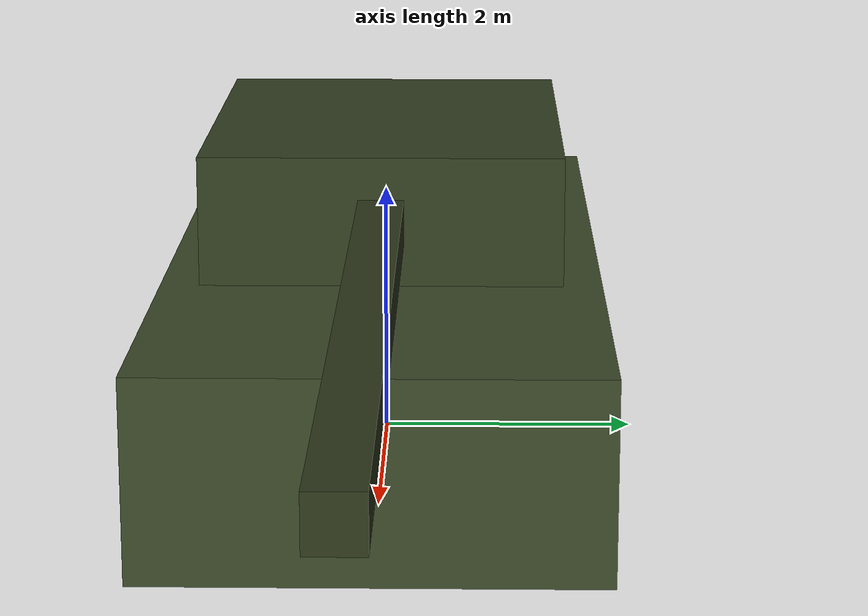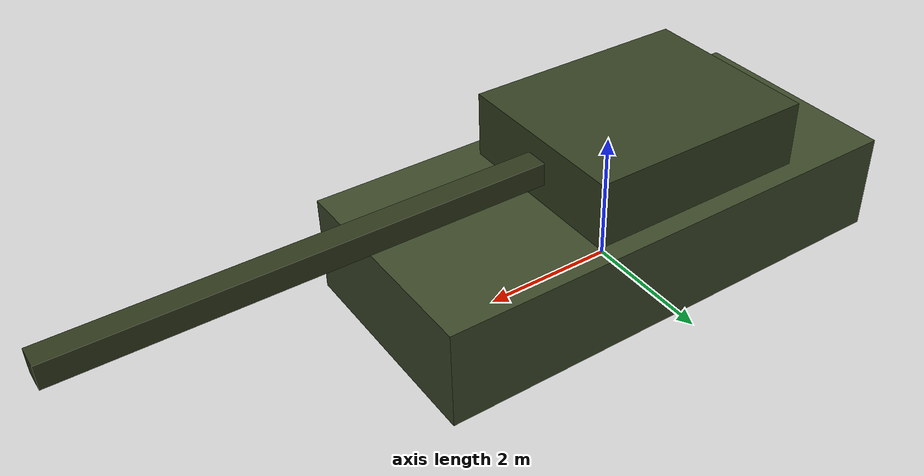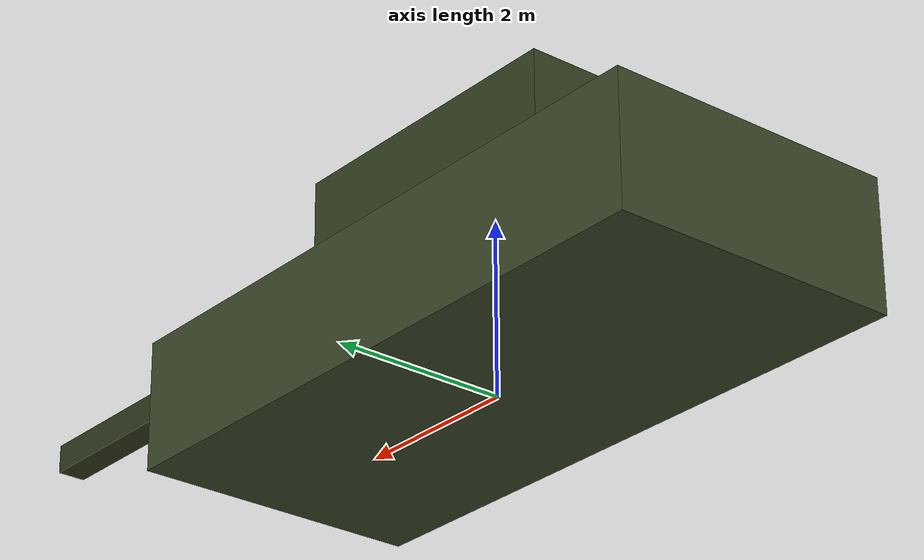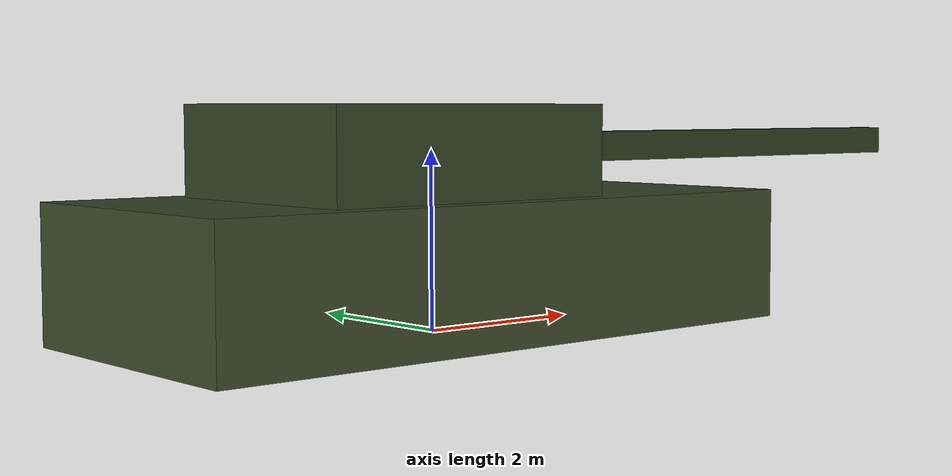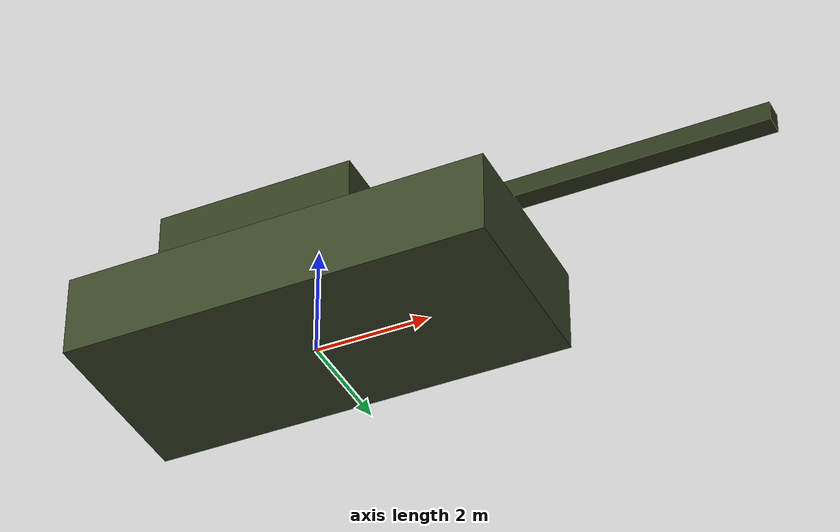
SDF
<?xml version="1.0" ?>
<sdf version="1.9">
  <model name="sp_artillery">
    <static>true</static>
    <pose>0 0 0.75 0 0 0</pose>
    <link name="body">
      <!-- Hull: 7.5 x 3.4 x 1.5m -->
      <visual name="hull">
        <geometry><box><size>7.5 3.4 1.5</size></box></geometry>
        <material>
          <ambient>0.18 0.23 0.13 1</ambient>
          <diffuse>0.23 0.28 0.16 1</diffuse>
        </material>
      </visual>
      <!-- Large turret: 3.5 x 2.8 x 1.0m -->
      <visual name="turret">
        <pose>-0.5 0 1.25 0 0 0</pose>
        <geometry><box><size>3.5 2.8 1.0</size></box></geometry>
        <material>
          <ambient>0.15 0.20 0.10 1</ambient>
          <diffuse>0.20 0.25 0.13 1</diffuse>
        </material>
      </visual>
      <!-- Very long gun barrel: 0.35 x 0.35 x 7.0m -->
      <visual name="gun_barrel">
        <pose>4.5 0 1.25 0 0 0</pose>
        <geometry><box><size>7.0 0.35 0.35</size></box></geometry>
        <material>
          <ambient>0.13 0.17 0.08 1</ambient>
          <diffuse>0.18 0.22 0.11 1</diffuse>
        </material>
      </visual>
      <collision name="collision">
        <geometry><box><size>7.5 3.4 1.5</size></box></geometry>
      </collision>
    </link>
  </model>
</sdf>
